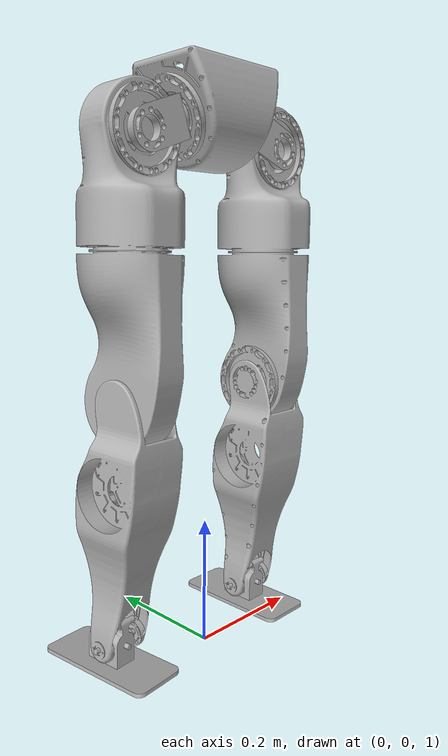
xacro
<?xml version="1.0" ?>
<robot name="lower_body" xmlns:xacro="http://www.ros.org/wiki/xacro">

  <material name="silver">
    <color rgba="0.700 0.700 0.700 1.000"/>
  </material>

  <xacro:property name="pkg_path" value="/home/manoja/msp2/lower_body" />
  <xacro:include filename="${pkg_path}/urdf/lower_body.ros2_control.xacro" />

  <link name="world"/>

  <joint name="fixed" type="fixed">
    <parent link="world"/>
    <child link="base_link"/>
    <origin xyz="0 0 1.0" rpy="0 0 0"/>
  </joint>

  <link name="base_link">
    <inertial>
      <origin xyz="0.002978049443025171 3.331729238924102e-05 0.8249140352934465" rpy="0 0 0"/>
      <mass value="5.565"/>
      <inertia ixx="0.0272538" iyy="0.0301722" izz="0.0318504" ixy="0" iyz="-6.3931e-06" ixz="-8.63068e-05"/>
    </inertial>
    <visual>
      <origin xyz="0 0 0" rpy="0 0 0"/>
      <geometry>
        <mesh filename="file://${pkg_path}/meshes/base_link.stl" scale="0.001 0.001 0.001"/>
      </geometry>
      <material name="silver"/>
    </visual>
    <collision>
      <origin xyz="0 0 0" rpy="0 0 0"/>
      <geometry>
        <mesh filename="file://${pkg_path}/meshes/base_link.stl" scale="0.001 0.001 0.001"/>
      </geometry>
    </collision>
  </link>

  <!-- Left Leg -->
  <link name="hip_L_1">
    <inertial>
      <origin xyz="0.03854907436256218 -0.00377537649362079 -0.014028849509831631" rpy="0 0 0"/>
      <mass value="1.008"/>
      <inertia ixx="0.00115998" iyy="0.00157855" izz="0.00190361" ixy="0.000204833" iyz="-7.34726e-05" ixz="0.000311702"/>
    </inertial>
    <visual>
      <origin xyz="-0.06406 -0.0 -0.80394" rpy="0 0 0"/>
      <geometry>
        <mesh filename="file://${pkg_path}/meshes/hip_L_1.stl" scale="0.001 0.001 0.001"/>
      </geometry>
      <material name="silver"/>
    </visual>
    <collision>
      <origin xyz="-0.06406 -0.0 -0.80394" rpy="0 0 0"/>
      <geometry>
        <mesh filename="file://${pkg_path}/meshes/hip_L_1.stl" scale="0.001 0.001 0.001"/>
      </geometry>
    </collision>
  </link>

  <joint name="hip_pitch_l" type="revolute">
    <origin xyz="0.06406 0.0 0.80394" rpy="0 0 0"/>
    <parent link="base_link"/>
    <child link="hip_L_1"/>
    <axis xyz="-0.939693 0.0 0.34202"/>
    <limit effort="100.0" velocity="5.0" lower="-1.57" upper="1.57"/>
    <dynamics damping="0.1" friction="0.0"/>
  </joint>

  <link name="thigh_L_1">
    <inertial>
      <origin xyz="-1.40174504655588e-05 -0.030115272344603504 -0.08645138758904114" rpy="0 0 0"/>
      <mass value="1.319"/>
      <inertia ixx="0.00664321" iyy="0.00731815" izz="0.00393772" ixy="8.98835e-06" iyz="0.000276188" ixz="1.22568e-05"/>
    </inertial>
    <visual>
      <origin xyz="-0.13829 -0.0315 -0.776903" rpy="0 0 0"/>
      <geometry>
        <mesh filename="file://${pkg_path}/meshes/thigh_L_1.stl" scale="0.001 0.001 0.001"/>
      </geometry>
      <material name="silver"/>
    </visual>
    <collision>
      <origin xyz="-0.13829 -0.0315 -0.776903" rpy="0 0 0"/>
      <geometry>
        <mesh filename="file://${pkg_path}/meshes/thigh_L_1.stl" scale="0.001 0.001 0.001"/>
      </geometry>
    </collision>
  </link>

  <joint name="thigh_roll_l" type="revolute">
    <origin xyz="0.07423 0.0315 -0.027037" rpy="0 0 0"/>
    <parent link="hip_L_1"/>
    <child link="thigh_L_1"/>
    <axis xyz="0.0 1.0 0.0"/>
    <limit effort="100.0" velocity="5.0" lower="-0.5" upper="0.5"/>
    <dynamics damping="0.1" friction="0.0"/>
  </joint>

  <link name="upper_knee_L_1">
    <inertial>
      <origin xyz="-0.0013353106898234268 -0.005517962362791416 -0.11408271066504616" rpy="0 0 0"/>
      <mass value="2.264"/>
      <inertia ixx="0.0219197" iyy="0.0193774" izz="0.00704322" ixy="2.59696e-05" iyz="-0.000436015" ixz="-0.000475653"/>
    </inertial>
    <visual>
      <origin xyz="-0.138295 -0.005168 -0.620317" rpy="0 0 0"/>
      <geometry>
        <mesh filename="file://${pkg_path}/meshes/upper_knee_L_1.stl" scale="0.001 0.001 0.001"/>
      </geometry>
      <material name="silver"/>
    </visual>
    <collision>
      <origin xyz="-0.138295 -0.005168 -0.620317" rpy="0 0 0"/>
      <geometry>
        <mesh filename="file://${pkg_path}/meshes/upper_knee_L_1.stl" scale="0.001 0.001 0.001"/>
      </geometry>
    </collision>
  </link>

  <joint name="thigh_yaw_l" type="revolute">
    <origin xyz="5e-06 -0.026332 -0.156586" rpy="0 0 0"/>
    <parent link="thigh_L_1"/>
    <child link="upper_knee_L_1"/>
    <axis xyz="0.0 0.0 -1.0"/>
    <limit effort="100.0" velocity="5.0" lower="-0.5" upper="0.5"/>
    <dynamics damping="0.1" friction="0.0"/>
  </joint>

  <link name="lower_knee_L_1">
    <inertial>
      <origin xyz="-0.026381467582163642 0.002587818636810185 -0.14748715164304727" rpy="0 0 0"/>
      <mass value="1.446"/>
      <inertia ixx="0.0179909" iyy="0.0174857" izz="0.00337026" ixy="1.2e-05" iyz="0.00187816" ixz="-4.22513e-05"/>
    </inertial>
    <visual>
      <origin xyz="-0.165295 -0.005033 -0.410617" rpy="0 0 0"/>
      <geometry>
        <mesh filename="file://${pkg_path}/meshes/lower_knee_L_1.stl" scale="0.001 0.001 0.001"/>
      </geometry>
      <material name="silver"/>
    </visual>
    <collision>
      <origin xyz="-0.165295 -0.005033 -0.410617" rpy="0 0 0"/>
      <geometry>
        <mesh filename="file://${pkg_path}/meshes/lower_knee_L_1.stl" scale="0.001 0.001 0.001"/>
      </geometry>
    </collision>
  </link>

  <joint name="knee_pitch_l" type="revolute">
    <origin xyz="0.027 -0.000135 -0.2097" rpy="0 0 0"/>
    <parent link="upper_knee_L_1"/>
    <child link="lower_knee_L_1"/>
    <axis xyz="1.0 0.0 0.0"/>
    <limit effort="100.0" velocity="5.0" lower="-2.0" upper="2.0"/>
    <dynamics damping="0.1" friction="0.0"/>
  </joint>

  <link name="ankle_L_1">
    <inertial>
      <origin xyz="-0.029486478549063777 0.001377277986068716 4.950374079513986e-06" rpy="0 0 0"/>
      <mass value="0.10759548262439121"/>
      <inertia ixx="1.6e-05" iyy="3.8e-05" izz="5.1e-05" ixy="-0.0" iyz="-0.0" ixz="-0.0"/>
    </inertial>
    <visual>
      <origin xyz="-0.169321 -0.030731 -0.047638" rpy="0 0 0"/>
      <geometry>
        <mesh filename="file://${pkg_path}/meshes/ankle_L_1.stl" scale="0.001 0.001 0.001"/>
      </geometry>
      <material name="silver"/>
    </visual>
    <collision>
      <origin xyz="-0.169321 -0.030731 -0.047638" rpy="0 0 0"/>
      <geometry>
        <mesh filename="file://${pkg_path}/meshes/ankle_L_1.stl" scale="0.001 0.001 0.001"/>
      </geometry>
    </collision>
  </link>

  <joint name="ankle_pitch_l" type="revolute">
    <origin xyz="0.004026 0.025698 -0.362979" rpy="0 0 0"/>
    <parent link="lower_knee_L_1"/>
    <child link="ankle_L_1"/>
    <axis xyz="1.0 0.0 0.0"/>
    <limit effort="100.0" velocity="5.0" lower="-1.0" upper="1.0"/>
    <dynamics damping="0.1" friction="0.0"/>
  </joint>

  <link name="feet_L_1">
    <inertial>
      <origin xyz="1.4590627572308446e-05 -0.030224126757618437 -0.025368031084606422" rpy="0 0 0"/>
      <mass value="0.365"/>
      <inertia ixx="0.000967774" iyy="0.000266357" izz="0.0010612" ixy="2.4e-05" iyz="1.60238e-05" ixz="-0"/>
    </inertial>
    <visual>
      <origin xyz="-0.141356 -0.069456 -0.047775" rpy="0 0 0"/>
      <geometry>
        <mesh filename="file://${pkg_path}/meshes/feet_L_1.stl" scale="0.001 0.001 0.001"/>
      </geometry>
      <material name="silver"/>
    </visual>
    <collision>
      <origin xyz="-0.141356 -0.069456 -0.047775" rpy="0 0 0"/>
      <geometry>
        <mesh filename="file://${pkg_path}/meshes/feet_L_1.stl" scale="0.001 0.001 0.001"/>
      </geometry>
    </collision>
  </link>

  <joint name="ankle_roll_l" type="revolute">
    <origin xyz="-0.027965 0.038725 0.000137" rpy="0 0 0"/>
    <parent link="ankle_L_1"/>
    <child link="feet_L_1"/>
    <axis xyz="0.0 -1.0 0.0"/>
    <limit effort="100.0" velocity="5.0" lower="-0.5" upper="0.5"/>
    <dynamics damping="0.1" friction="0.0"/>
  </joint>

  <!-- Right Leg -->
  <link name="hip_R_1">
    <inertial>
      <origin xyz="-0.038552261262815704 -0.003775357521075904 -0.014020100360895404" rpy="0 0 0"/>
      <mass value="1.008"/>
      <inertia ixx="0.00115998" iyy="0.00157855" izz="0.00190361" ixy="-0.000204833" iyz="-7.34726e-05" ixz="-0.000311702"/>
    </inertial>
    <visual>
      <origin xyz="0.06406 -0.0 -0.80394" rpy="0 0 0"/>
      <geometry>
        <mesh filename="file://${pkg_path}/meshes/hip_R_1.stl" scale="0.001 0.001 0.001"/>
      </geometry>
      <material name="silver"/>
    </visual>
    <collision>
      <origin xyz="0.06406 -0.0 -0.80394" rpy="0 0 0"/>
      <geometry>
        <mesh filename="file://${pkg_path}/meshes/hip_R_1.stl" scale="0.001 0.001 0.001"/>
      </geometry>
    </collision>
  </link>

  <joint name="hip_pitch_r" type="revolute">
    <origin xyz="-0.06406 0.0 0.80394" rpy="0 0 0"/>
    <parent link="base_link"/>
    <child link="hip_R_1"/>
    <axis xyz="0.939693 0.0 0.34202"/>
    <limit effort="100.0" velocity="5.0" lower="-1.57" upper="1.57"/>
    <dynamics damping="0.1" friction="0.0"/>
  </joint>

  <link name="thigh_R_1">
    <inertial>
      <origin xyz="-0.0020791884572767816 -0.030383815559322697 -0.0863687783674898" rpy="0 0 0"/>
      <mass value="1.319"/>
      <inertia ixx="0.00664117" iyy="0.00719671" izz="0.00381943" ixy="1.14208e-05" iyz="0.000270019" ixz="-7.17876e-05"/>
    </inertial>
    <visual>
      <origin xyz="0.138263 -0.0315 -0.77683" rpy="0 0 0"/>
      <geometry>
        <mesh filename="file://${pkg_path}/meshes/thigh_R_1.stl" scale="0.001 0.001 0.001"/>
      </geometry>
      <material name="silver"/>
    </visual>
    <collision>
      <origin xyz="0.138263 -0.0315 -0.77683" rpy="0 0 0"/>
      <geometry>
        <mesh filename="file://${pkg_path}/meshes/thigh_R_1.stl" scale="0.001 0.001 0.001"/>
      </geometry>
    </collision>
  </link>

  <joint name="thigh_roll_r" type="revolute">
    <origin xyz="-0.074203 0.0315 -0.02711" rpy="0 0 0"/>
    <parent link="hip_R_1"/>
    <child link="thigh_R_1"/>
    <axis xyz="0.0 1.0 0.0"/>
    <limit effort="100.0" velocity="5.0" lower="-0.5" upper="0.5"/>
    <dynamics damping="0.1" friction="0.0"/>
  </joint>

  <link name="upper_knee_R_1">
    <inertial>
      <origin xyz="-0.0007904776210841402 -0.005611532850717232 -1.1408357177758233e-01" rpy="0 0 0"/>
      <mass value="2.264"/>
      <inertia ixx="0.0219137" iyy="0.0193988" izz="0.00702938" ixy="0.00022962" iyz="-0.000418237" ixz="0.000168115"/>
    </inertial>
    <visual>
      <origin xyz="0.141977 -0.004808 -0.620349" rpy="0 0 0"/>
      <geometry>
        <mesh filename="file://${pkg_path}/meshes/upper_knee_R_1.stl" scale="0.001 0.001 0.001"/>
      </geometry>
      <material name="silver"/>
    </visual>
    <collision>
      <origin xyz="0.141977 -0.004808 -0.620349" rpy="0 0 0"/>
      <geometry>
        <mesh filename="file://${pkg_path}/meshes/upper_knee_R_1.stl" scale="0.001 0.001 0.001"/>
      </geometry>
    </collision>
  </link>

  <joint name="thigh_yaw_r" type="revolute">
    <origin xyz="-0.003714 -0.026692 -0.156481" rpy="0 0 0"/>
    <parent link="thigh_R_1"/>
    <child link="upper_knee_R_1"/>
    <axis xyz="0.0 0.0 -1.0"/>
    <limit effort="100.0" velocity="5.0" lower="-0.5" upper="0.5"/>
    <dynamics damping="0.1" friction="0.0"/>
  </joint>

  <link name="lower_knee_R_1">
    <inertial>
      <origin xyz="0.02249291366303005 0.004807172510886975 -0.14807185562679898" rpy="0 0 0"/>
      <mass value="1.446"/>
      <inertia ixx="0.0179724" iyy="0.0175592" izz="0.00343161" ixy="7.69783e-05" iyz="0.00182317" ixz="-0.000495439"/>
    </inertial>
    <visual>
      <origin xyz="0.172267 -0.001544 -0.411313" rpy="0 0 0"/>
      <geometry>
        <mesh filename="file://${pkg_path}/meshes/lower_knee_R_1.stl" scale="0.001 0.001 0.001"/>
      </geometry>
      <material name="silver"/>
    </visual>
    <collision>
      <origin xyz="0.172267 -0.001544 -0.411313" rpy="0 0 0"/>
      <geometry>
        <mesh filename="file://${pkg_path}/meshes/lower_knee_R_1.stl" scale="0.001 0.001 0.001"/>
      </geometry>
    </collision>
  </link>

  <joint name="knee_pitch_r" type="revolute">
    <origin xyz="-0.03029 -0.003264 -0.209036" rpy="0 0 0"/>
    <parent link="upper_knee_R_1"/>
    <child link="lower_knee_R_1"/>
    <axis xyz="1.0 0.0 0.0"/>
    <limit effort="100.0" velocity="5.0" lower="-2.0" upper="2.0"/>
    <dynamics damping="0.1" friction="0.0"/>
  </joint>

  <link name="ankle_R_1">
    <inertial>
      <origin xyz="0.029175110656741804 0.004434380289984066 -0.0006992377379477013" rpy="0 0 0"/>
      <mass value="0.1075954826243918"/>
      <inertia ixx="1.6e-05" iyy="3.8e-05" izz="5.1e-05" ixy="-2e-06" iyz="0.0" ixz="1e-06"/>
    </inertial>
    <visual>
      <origin xyz="0.187464 -0.025444 -0.048506" rpy="0 0 0"/>
      <geometry>
        <mesh filename="file://${pkg_path}/meshes/ankle_R_1.stl" scale="0.001 0.001 0.001"/>
      </geometry>
      <material name="silver"/>
    </visual>
    <collision>
      <origin xyz="0.187464 -0.025444 -0.048506" rpy="0 0 0"/>
      <geometry>
        <mesh filename="file://${pkg_path}/meshes/ankle_R_1.stl" scale="0.001 0.001 0.001"/>
      </geometry>
    </collision>
  </link>

  <joint name="ankle_pitch_r" type="revolute">
    <origin xyz="-0.015197 0.0239 -0.362807" rpy="0 0 0"/>
    <parent link="lower_knee_R_1"/>
    <child link="ankle_R_1"/>
    <axis xyz="1.0 0.0 0.0"/>
    <limit effort="100.0" velocity="5.0" lower="-1.0" upper="1.0"/>
    <dynamics damping="0.1" friction="0.0"/>
  </joint>

  <link name="feet_R_1">
    <inertial>
      <origin xyz="0.0026047017550297202 -0.030217438377113798 -0.025242270995119415" rpy="0 0 0"/>
      <mass value="0.365"/>
      <inertia ixx="0.000958402" iyy="0.000276032" izz="0.00106089" ixy="8.13281e-05" iyz="1.90471e-05" ixz="0"/>
    </inertial>
    <visual>
      <origin xyz="0.163716 -0.067164 -0.047827" rpy="0 0 0"/>
      <geometry>
        <mesh filename="file://${pkg_path}/meshes/feet_R_1.stl" scale="0.001 0.001 0.001"/>
      </geometry>
      <material name="silver"/>
    </visual>
    <collision>
      <origin xyz="0.163716 -0.067164 -0.047827" rpy="0 0 0"/>
      <geometry>
        <mesh filename="file://${pkg_path}/meshes/feet_R_1.stl" scale="0.001 0.001 0.001"/>
      </geometry>
    </collision>
  </link>

  <joint name="ankle_roll_r" type="revolute">
    <origin xyz="0.023748 0.04172 -0.000679" rpy="0 0 0"/>
    <parent link="ankle_R_1"/>
    <child link="feet_R_1"/>
    <axis xyz="0.0 -1.0 0.0"/>
    <limit effort="100.0" velocity="5.0" lower="-0.5" upper="0.5"/>
    <dynamics damping="0.1" friction="0.0"/>
  </joint>

  <gazebo>
    <plugin filename="libgz_ros2_control-system.so" name="gz_ros2_control::GazeboSimROS2ControlPlugin">
      <parameters>${pkg_path}/config/ros2_controllers.yaml</parameters>
    </plugin>
  </gazebo>

</robot>
